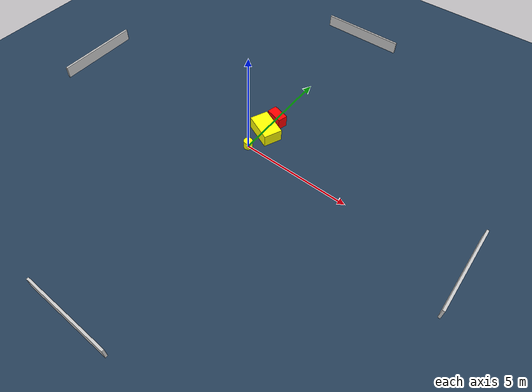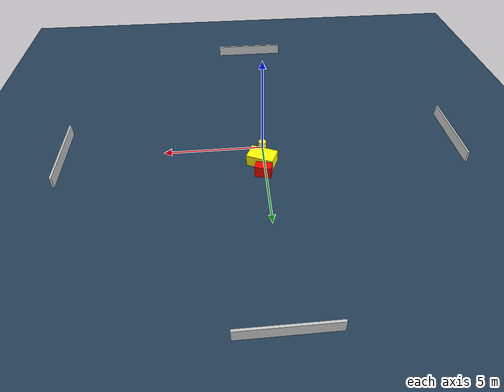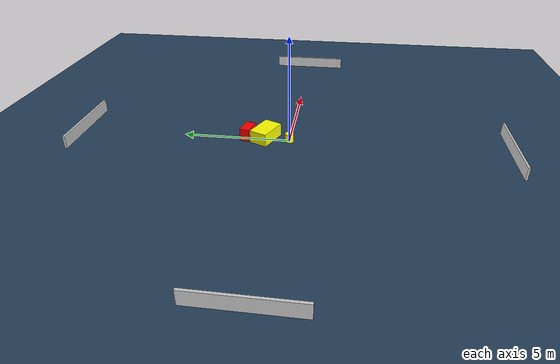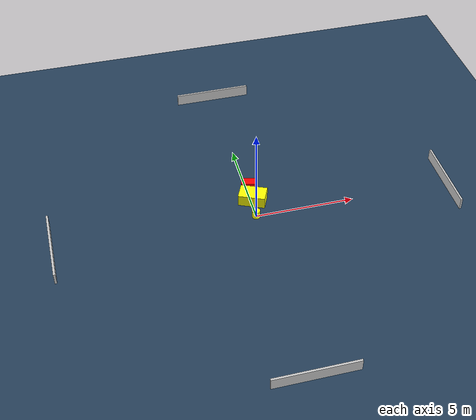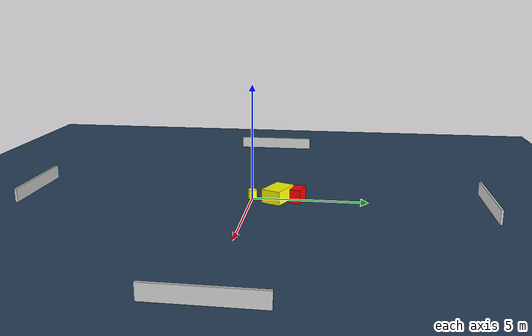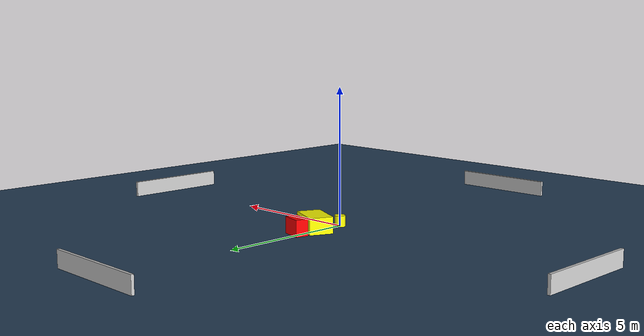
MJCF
<?xml version="1.0" ?>
<mujoco model="generated_environment">
  <option timestep="0.01" integrator="RK4" cone="elliptic"/>
  <default>
    <geom density="1"/>
  </default>
  <asset>
    <texture builtin="gradient" height="3072" name="skybox" rgb1="0.3 0.5 0.7" rgb2="0 0 0" type="skybox" width="512"/>
    <texture builtin="checker" height="300" name="groundplane" rgb1="0.2 0.3 0.4" rgb2="0.1 0.2 0.3" type="2d" width="300"/>
    <material name="groundplane" reflectance="0.2" texrepeat="5 5" texture="groundplane"/>
  </asset>
  <worldbody>
    <light dir="0 0 -1" directional="true" pos="0 0 1.5"/>
    <geom condim="3" friction="0.5 0.005 0.001" material="groundplane" name="floor" pos="0 0 0" size="0 0 0.05" type="plane"/>
    <body name="walls">
      <geom name="wall_1" condim="4" pos="-10.0 0.0 0.3" rgba="0.800000011920929 0.800000011920929 0.800000011920929 1.0" size="0.05 2.0 0.3" type="box"/>
      <geom name="wall_2" condim="4" pos="10.0 0.0 0.3" rgba="0.800000011920929 0.800000011920929 0.800000011920929 1.0" size="0.05 2.0 0.3" type="box"/>
      <geom name="wall_3" condim="4" pos="0.0 -10.0 0.3" rgba="0.800000011920929 0.800000011920929 0.800000011920929 1.0" size="2.0 0.05 0.3" type="box"/>
      <geom name="wall_4" condim="4" pos="0.0 10.0 0.3" rgba="0.800000011920929 0.800000011920929 0.800000011920929 1.0" size="2.0 0.05 0.3" type="box"/>
    </body>
    <body name="robot">
      <joint name="joint_x" type="slide" pos="0 0 0" axis="1 0 0"/>
      <joint name="joint_y" type="slide" pos="0 0 0" axis="0 1 0"/>
      <geom name="robot" type="cylinder" pos="0.0 0.0 0.2" size="0.2 0.2 0.0" mass="5.0" friction="1.0 0.005 0.0001" condim="4" rgba="1.0 1.0 0.0 1.0"/>
    </body>
    <body name="obstacle_1_movable">
      <geom name="obstacle_1_movable" condim="4" pos="0.11562127555950741 1.1375013350220298 0.3" euler="0 0 335.91940849607425" friction="0.0 0.005 0.001" rgba="1.0 1.0 0.0 1.0" size="0.6737717633721654 0.43093180863121694 0.3" type="box" mass="0.1"/>
      <joint type="free"/>
    </body>
    <body name="obstacle_2_static">
      <geom name="obstacle_2_static" condim="4" pos="0.12918494641952266 1.991927022072427 0.3" euler="0 0 165.41416294832888" friction="0.0 0.005 0.001" rgba="1.0 0.0 0.0 1.0" size="0.39913669476401725 0.23116210330142514 0.3" type="box"/>
    </body>
  </worldbody>
  <actuator>
    <motor name="actuator_x" joint="joint_x" gear="1" ctrlrange="-1 1"/>
    <motor name="actuator_y" joint="joint_y" gear="1" ctrlrange="-1 1"/>
  </actuator>
</mujoco>
